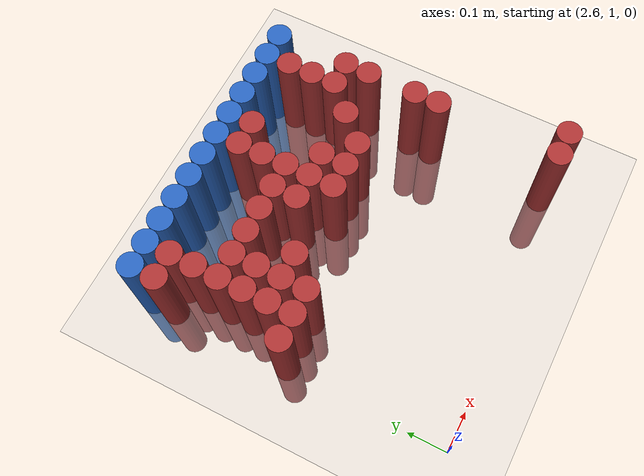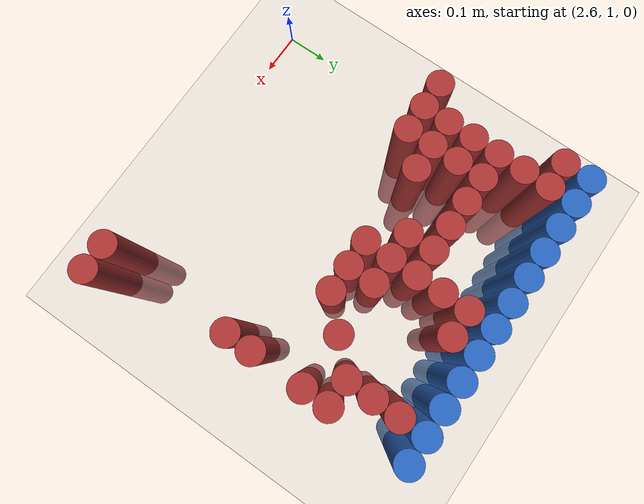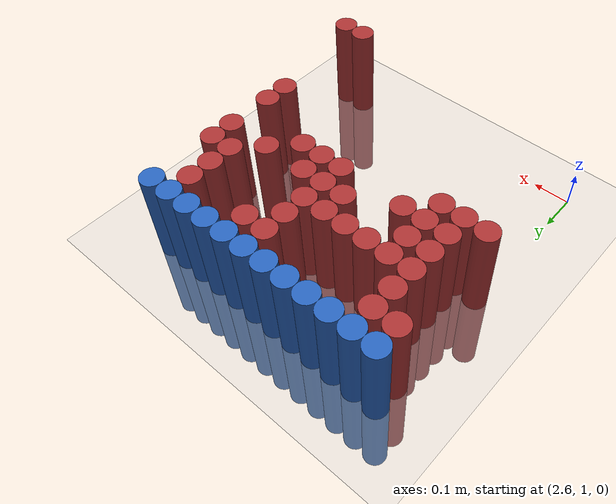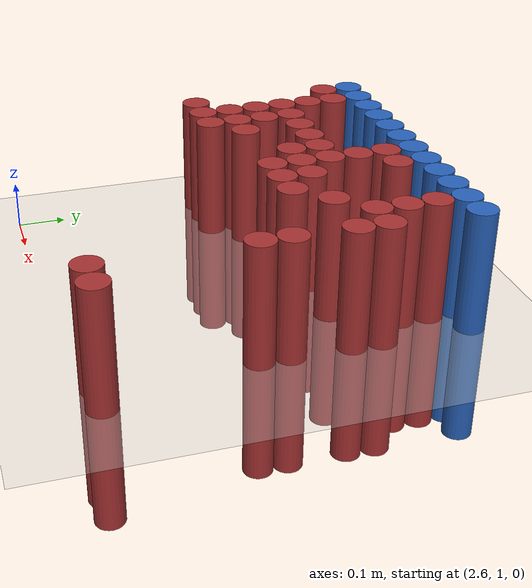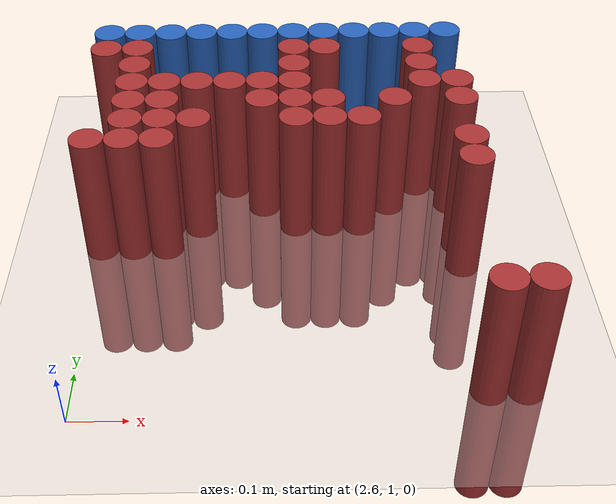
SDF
<sdf version="1.6">
 <world name="default">
  <model name="ground_plane">
   <static>1</static>
   <link name="link">
    <collision name="collision">
     <geometry><plane><normal>0 0 1</normal><size>100 100</size></plane></geometry>
     <surface><friction><ode><mu>100</mu><mu2>50</mu2></ode></friction></surface>
    </collision>
    <visual name="visual">
     <cast_shadows>0</cast_shadows>
     <geometry><plane><normal>0 0 1</normal><size>100 100</size></plane></geometry>
     <material>
      <script><uri>file://media/materials/scripts/gazebo.material</uri><name>Gazebo/Grey</name></script>
     </material>
    </visual>
   </link>
  </model>
  <model name="unit_cylinder_104">
   <static>1</static>
   <pose>2.610000 1.770000 0.000000 0.000000 0.000000 0.000000</pose>
   <link name="link">
    <inertial>
     <mass>1</mass>
     <inertia><ixx>0.145833</ixx><ixy>0</ixy><ixz>0</ixz><iyy>0.145833</iyy><iyz>0</iyz><izz>0.125</izz></inertia>
    </inertial>
    <collision name="collision">
     <geometry><cylinder><radius>0.030000</radius><length>0.5</length></cylinder></geometry>
    </collision>
    <visual name="visual">
     <geometry><cylinder><radius>0.030000</radius><length>0.5</length></cylinder></geometry>
     <material>
      <ambient>0.152000 0.379000 0.720000 1</ambient>
      <diffuse>0.152000 0.379000 0.720000 1</diffuse>
     </material>
     <material>
      <script><name>Gazebo/Grey</name><uri>file://media/materials/scripts/gazebo.material</uri></script>
     </material>
    </visual>
   </link>
  </model>
  <model name="unit_cylinder_105">
   <static>1</static>
   <pose>2.670000 1.770000 0.000000 0.000000 0.000000 0.000000</pose>
   <link name="link">
    <inertial>
     <mass>1</mass>
     <inertia><ixx>0.145833</ixx><ixy>0</ixy><ixz>0</ixz><iyy>0.145833</iyy><iyz>0</iyz><izz>0.125</izz></inertia>
    </inertial>
    <collision name="collision">
     <geometry><cylinder><radius>0.030000</radius><length>0.5</length></cylinder></geometry>
    </collision>
    <visual name="visual">
     <geometry><cylinder><radius>0.030000</radius><length>0.5</length></cylinder></geometry>
     <material>
      <ambient>0.152000 0.379000 0.720000 1</ambient>
      <diffuse>0.152000 0.379000 0.720000 1</diffuse>
     </material>
     <material>
      <script><name>Gazebo/Grey</name><uri>file://media/materials/scripts/gazebo.material</uri></script>
     </material>
    </visual>
   </link>
  </model>
  <model name="unit_cylinder_106">
   <static>1</static>
   <pose>2.730000 1.770000 0.000000 0.000000 0.000000 0.000000</pose>
   <link name="link">
    <inertial>
     <mass>1</mass>
     <inertia><ixx>0.145833</ixx><ixy>0</ixy><ixz>0</ixz><iyy>0.145833</iyy><iyz>0</iyz><izz>0.125</izz></inertia>
    </inertial>
    <collision name="collision">
     <geometry><cylinder><radius>0.030000</radius><length>0.5</length></cylinder></geometry>
    </collision>
    <visual name="visual">
     <geometry><cylinder><radius>0.030000</radius><length>0.5</length></cylinder></geometry>
     <material>
      <ambient>0.152000 0.379000 0.720000 1</ambient>
      <diffuse>0.152000 0.379000 0.720000 1</diffuse>
     </material>
     <material>
      <script><name>Gazebo/Grey</name><uri>file://media/materials/scripts/gazebo.material</uri></script>
     </material>
    </visual>
   </link>
  </model>
  <model name="unit_cylinder_107">
   <static>1</static>
   <pose>2.790000 1.770000 0.000000 0.000000 0.000000 0.000000</pose>
   <link name="link">
    <inertial>
     <mass>1</mass>
     <inertia><ixx>0.145833</ixx><ixy>0</ixy><ixz>0</ixz><iyy>0.145833</iyy><iyz>0</iyz><izz>0.125</izz></inertia>
    </inertial>
    <collision name="collision">
     <geometry><cylinder><radius>0.030000</radius><length>0.5</length></cylinder></geometry>
    </collision>
    <visual name="visual">
     <geometry><cylinder><radius>0.030000</radius><length>0.5</length></cylinder></geometry>
     <material>
      <ambient>0.152000 0.379000 0.720000 1</ambient>
      <diffuse>0.152000 0.379000 0.720000 1</diffuse>
     </material>
     <material>
      <script><name>Gazebo/Grey</name><uri>file://media/materials/scripts/gazebo.material</uri></script>
     </material>
    </visual>
   </link>
  </model>
  <model name="unit_cylinder_108">
   <static>1</static>
   <pose>2.850000 1.770000 0.000000 0.000000 0.000000 0.000000</pose>
   <link name="link">
    <inertial>
     <mass>1</mass>
     <inertia><ixx>0.145833</ixx><ixy>0</ixy><ixz>0</ixz><iyy>0.145833</iyy><iyz>0</iyz><izz>0.125</izz></inertia>
    </inertial>
    <collision name="collision">
     <geometry><cylinder><radius>0.030000</radius><length>0.5</length></cylinder></geometry>
    </collision>
    <visual name="visual">
     <geometry><cylinder><radius>0.030000</radius><length>0.5</length></cylinder></geometry>
     <material>
      <ambient>0.152000 0.379000 0.720000 1</ambient>
      <diffuse>0.152000 0.379000 0.720000 1</diffuse>
     </material>
     <material>
      <script><name>Gazebo/Grey</name><uri>file://media/materials/scripts/gazebo.material</uri></script>
     </material>
    </visual>
   </link>
  </model>
  <model name="unit_cylinder_109">
   <static>1</static>
   <pose>2.910000 1.770000 0.000000 0.000000 0.000000 0.000000</pose>
   <link name="link">
    <inertial>
     <mass>1</mass>
     <inertia><ixx>0.145833</ixx><ixy>0</ixy><ixz>0</ixz><iyy>0.145833</iyy><iyz>0</iyz><izz>0.125</izz></inertia>
    </inertial>
    <collision name="collision">
     <geometry><cylinder><radius>0.030000</radius><length>0.5</length></cylinder></geometry>
    </collision>
    <visual name="visual">
     <geometry><cylinder><radius>0.030000</radius><length>0.5</length></cylinder></geometry>
     <material>
      <ambient>0.152000 0.379000 0.720000 1</ambient>
      <diffuse>0.152000 0.379000 0.720000 1</diffuse>
     </material>
     <material>
      <script><name>Gazebo/Grey</name><uri>file://media/materials/scripts/gazebo.material</uri></script>
     </material>
    </visual>
   </link>
  </model>
  <model name="unit_cylinder_110">
   <static>1</static>
   <pose>2.970000 1.770000 0.000000 0.000000 0.000000 0.000000</pose>
   <link name="link">
    <inertial>
     <mass>1</mass>
     <inertia><ixx>0.145833</ixx><ixy>0</ixy><ixz>0</ixz><iyy>0.145833</iyy><iyz>0</iyz><izz>0.125</izz></inertia>
    </inertial>
    <collision name="collision">
     <geometry><cylinder><radius>0.030000</radius><length>0.5</length></cylinder></geometry>
    </collision>
    <visual name="visual">
     <geometry><cylinder><radius>0.030000</radius><length>0.5</length></cylinder></geometry>
     <material>
      <ambient>0.152000 0.379000 0.720000 1</ambient>
      <diffuse>0.152000 0.379000 0.720000 1</diffuse>
     </material>
     <material>
      <script><name>Gazebo/Grey</name><uri>file://media/materials/scripts/gazebo.material</uri></script>
     </material>
    </visual>
   </link>
  </model>
  <model name="unit_cylinder_111">
   <static>1</static>
   <pose>3.030000 1.770000 0.000000 0.000000 0.000000 0.000000</pose>
   <link name="link">
    <inertial>
     <mass>1</mass>
     <inertia><ixx>0.145833</ixx><ixy>0</ixy><ixz>0</ixz><iyy>0.145833</iyy><iyz>0</iyz><izz>0.125</izz></inertia>
    </inertial>
    <collision name="collision">
     <geometry><cylinder><radius>0.030000</radius><length>0.5</length></cylinder></geometry>
    </collision>
    <visual name="visual">
     <geometry><cylinder><radius>0.030000</radius><length>0.5</length></cylinder></geometry>
     <material>
      <ambient>0.152000 0.379000 0.720000 1</ambient>
      <diffuse>0.152000 0.379000 0.720000 1</diffuse>
     </material>
     <material>
      <script><name>Gazebo/Grey</name><uri>file://media/materials/scripts/gazebo.material</uri></script>
     </material>
    </visual>
   </link>
  </model>
  <model name="unit_cylinder_112">
   <static>1</static>
   <pose>3.090000 1.770000 0.000000 0.000000 0.000000 0.000000</pose>
   <link name="link">
    <inertial>
     <mass>1</mass>
     <inertia><ixx>0.145833</ixx><ixy>0</ixy><ixz>0</ixz><iyy>0.145833</iyy><iyz>0</iyz><izz>0.125</izz></inertia>
    </inertial>
    <collision name="collision">
     <geometry><cylinder><radius>0.030000</radius><length>0.5</length></cylinder></geometry>
    </collision>
    <visual name="visual">
     <geometry><cylinder><radius>0.030000</radius><length>0.5</length></cylinder></geometry>
     <material>
      <ambient>0.152000 0.379000 0.720000 1</ambient>
      <diffuse>0.152000 0.379000 0.720000 1</diffuse>
     </material>
     <material>
      <script><name>Gazebo/Grey</name><uri>file://media/materials/scripts/gazebo.material</uri></script>
     </material>
    </visual>
   </link>
  </model>
  <model name="unit_cylinder_113">
   <static>1</static>
   <pose>3.150000 1.770000 0.000000 0.000000 0.000000 0.000000</pose>
   <link name="link">
    <inertial>
     <mass>1</mass>
     <inertia><ixx>0.145833</ixx><ixy>0</ixy><ixz>0</ixz><iyy>0.145833</iyy><iyz>0</iyz><izz>0.125</izz></inertia>
    </inertial>
    <collision name="collision">
     <geometry><cylinder><radius>0.030000</radius><length>0.5</length></cylinder></geometry>
    </collision>
    <visual name="visual">
     <geometry><cylinder><radius>0.030000</radius><length>0.5</length></cylinder></geometry>
     <material>
      <ambient>0.152000 0.379000 0.720000 1</ambient>
      <diffuse>0.152000 0.379000 0.720000 1</diffuse>
     </material>
     <material>
      <script><name>Gazebo/Grey</name><uri>file://media/materials/scripts/gazebo.material</uri></script>
     </material>
    </visual>
   </link>
  </model>
  <model name="unit_cylinder_114">
   <static>1</static>
   <pose>3.210000 1.770000 0.000000 0.000000 0.000000 0.000000</pose>
   <link name="link">
    <inertial>
     <mass>1</mass>
     <inertia><ixx>0.145833</ixx><ixy>0</ixy><ixz>0</ixz><iyy>0.145833</iyy><iyz>0</iyz><izz>0.125</izz></inertia>
    </inertial>
    <collision name="collision">
     <geometry><cylinder><radius>0.030000</radius><length>0.5</length></cylinder></geometry>
    </collision>
    <visual name="visual">
     <geometry><cylinder><radius>0.030000</radius><length>0.5</length></cylinder></geometry>
     <material>
      <ambient>0.152000 0.379000 0.720000 1</ambient>
      <diffuse>0.152000 0.379000 0.720000 1</diffuse>
     </material>
     <material>
      <script><name>Gazebo/Grey</name><uri>file://media/materials/scripts/gazebo.material</uri></script>
     </material>
    </visual>
   </link>
  </model>
  <model name="unit_cylinder_115">
   <static>1</static>
   <pose>3.270000 1.770000 0.000000 0.000000 0.000000 0.000000</pose>
   <link name="link">
    <inertial>
     <mass>1</mass>
     <inertia><ixx>0.145833</ixx><ixy>0</ixy><ixz>0</ixz><iyy>0.145833</iyy><iyz>0</iyz><izz>0.125</izz></inertia>
    </inertial>
    <collision name="collision">
     <geometry><cylinder><radius>0.030000</radius><length>0.5</length></cylinder></geometry>
    </collision>
    <visual name="visual">
     <geometry><cylinder><radius>0.030000</radius><length>0.5</length></cylinder></geometry>
     <material>
      <ambient>0.152000 0.379000 0.720000 1</ambient>
      <diffuse>0.152000 0.379000 0.720000 1</diffuse>
     </material>
     <material>
      <script><name>Gazebo/Grey</name><uri>file://media/materials/scripts/gazebo.material</uri></script>
     </material>
    </visual>
   </link>
  </model>
  <model name="unit_cylinder_130">
   <static>1</static>
   <pose>2.610000 1.710000 0.000000 0.000000 0.000000 0.000000</pose>
   <link name="link">
    <inertial>
     <mass>1</mass>
     <inertia><ixx>0.145833</ixx><ixy>0</ixy><ixz>0</ixz><iyy>0.145833</iyy><iyz>0</iyz><izz>0.125</izz></inertia>
    </inertial>
    <collision name="collision">
     <geometry><cylinder><radius>0.030000</radius><length>0.5</length></cylinder></geometry>
    </collision>
    <visual name="visual">
     <geometry><cylinder><radius>0.030000</radius><length>0.5</length></cylinder></geometry>
     <material>
      <ambient>0.648000 0.192000 0.192000 1</ambient>
      <diffuse>0.648000 0.192000 0.192000 1</diffuse>
     </material>
     <material>
      <script><name>Gazebo/Grey</name><uri>file://media/materials/scripts/gazebo.material</uri></script>
     </material>
    </visual>
   </link>
  </model>
  <model name="unit_cylinder_131">
   <static>1</static>
   <pose>2.670000 1.710000 0.000000 0.000000 0.000000 0.000000</pose>
   <link name="link">
    <inertial>
     <mass>1</mass>
     <inertia><ixx>0.145833</ixx><ixy>0</ixy><ixz>0</ixz><iyy>0.145833</iyy><iyz>0</iyz><izz>0.125</izz></inertia>
    </inertial>
    <collision name="collision">
     <geometry><cylinder><radius>0.030000</radius><length>0.5</length></cylinder></geometry>
    </collision>
    <visual name="visual">
     <geometry><cylinder><radius>0.030000</radius><length>0.5</length></cylinder></geometry>
     <material>
      <ambient>0.648000 0.192000 0.192000 1</ambient>
      <diffuse>0.648000 0.192000 0.192000 1</diffuse>
     </material>
     <material>
      <script><name>Gazebo/Grey</name><uri>file://media/materials/scripts/gazebo.material</uri></script>
     </material>
    </visual>
   </link>
  </model>
  <model name="unit_cylinder_132">
   <static>1</static>
   <pose>2.970000 1.710000 0.000000 0.000000 0.000000 0.000000</pose>
   <link name="link">
    <inertial>
     <mass>1</mass>
     <inertia><ixx>0.145833</ixx><ixy>0</ixy><ixz>0</ixz><iyy>0.145833</iyy><iyz>0</iyz><izz>0.125</izz></inertia>
    </inertial>
    <collision name="collision">
     <geometry><cylinder><radius>0.030000</radius><length>0.5</length></cylinder></geometry>
    </collision>
    <visual name="visual">
     <geometry><cylinder><radius>0.030000</radius><length>0.5</length></cylinder></geometry>
     <material>
      <ambient>0.648000 0.192000 0.192000 1</ambient>
      <diffuse>0.648000 0.192000 0.192000 1</diffuse>
     </material>
     <material>
      <script><name>Gazebo/Grey</name><uri>file://media/materials/scripts/gazebo.material</uri></script>
     </material>
    </visual>
   </link>
  </model>
  <model name="unit_cylinder_133">
   <static>1</static>
   <pose>3.030000 1.710000 0.000000 0.000000 0.000000 0.000000</pose>
   <link name="link">
    <inertial>
     <mass>1</mass>
     <inertia><ixx>0.145833</ixx><ixy>0</ixy><ixz>0</ixz><iyy>0.145833</iyy><iyz>0</iyz><izz>0.125</izz></inertia>
    </inertial>
    <collision name="collision">
     <geometry><cylinder><radius>0.030000</radius><length>0.5</length></cylinder></geometry>
    </collision>
    <visual name="visual">
     <geometry><cylinder><radius>0.030000</radius><length>0.5</length></cylinder></geometry>
     <material>
      <ambient>0.648000 0.192000 0.192000 1</ambient>
      <diffuse>0.648000 0.192000 0.192000 1</diffuse>
     </material>
     <material>
      <script><name>Gazebo/Grey</name><uri>file://media/materials/scripts/gazebo.material</uri></script>
     </material>
    </visual>
   </link>
  </model>
  <model name="unit_cylinder_134">
   <static>1</static>
   <pose>3.210000 1.710000 0.000000 0.000000 0.000000 0.000000</pose>
   <link name="link">
    <inertial>
     <mass>1</mass>
     <inertia><ixx>0.145833</ixx><ixy>0</ixy><ixz>0</ixz><iyy>0.145833</iyy><iyz>0</iyz><izz>0.125</izz></inertia>
    </inertial>
    <collision name="collision">
     <geometry><cylinder><radius>0.030000</radius><length>0.5</length></cylinder></geometry>
    </collision>
    <visual name="visual">
     <geometry><cylinder><radius>0.030000</radius><length>0.5</length></cylinder></geometry>
     <material>
      <ambient>0.648000 0.192000 0.192000 1</ambient>
      <diffuse>0.648000 0.192000 0.192000 1</diffuse>
     </material>
     <material>
      <script><name>Gazebo/Grey</name><uri>file://media/materials/scripts/gazebo.material</uri></script>
     </material>
    </visual>
   </link>
  </model>
  <model name="unit_cylinder_143">
   <static>1</static>
   <pose>2.670000 1.650000 0.000000 0.000000 0.000000 0.000000</pose>
   <link name="link">
    <inertial>
     <mass>1</mass>
     <inertia><ixx>0.145833</ixx><ixy>0</ixy><ixz>0</ixz><iyy>0.145833</iyy><iyz>0</iyz><izz>0.125</izz></inertia>
    </inertial>
    <collision name="collision">
     <geometry><cylinder><radius>0.030000</radius><length>0.5</length></cylinder></geometry>
    </collision>
    <visual name="visual">
     <geometry><cylinder><radius>0.030000</radius><length>0.5</length></cylinder></geometry>
     <material>
      <ambient>0.648000 0.192000 0.192000 1</ambient>
      <diffuse>0.648000 0.192000 0.192000 1</diffuse>
     </material>
     <material>
      <script><name>Gazebo/Grey</name><uri>file://media/materials/scripts/gazebo.material</uri></script>
     </material>
    </visual>
   </link>
  </model>
  <model name="unit_cylinder_144">
   <static>1</static>
   <pose>2.970000 1.650000 0.000000 0.000000 0.000000 0.000000</pose>
   <link name="link">
    <inertial>
     <mass>1</mass>
     <inertia><ixx>0.145833</ixx><ixy>0</ixy><ixz>0</ixz><iyy>0.145833</iyy><iyz>0</iyz><izz>0.125</izz></inertia>
    </inertial>
    <collision name="collision">
     <geometry><cylinder><radius>0.030000</radius><length>0.5</length></cylinder></geometry>
    </collision>
    <visual name="visual">
     <geometry><cylinder><radius>0.030000</radius><length>0.5</length></cylinder></geometry>
     <material>
      <ambient>0.648000 0.192000 0.192000 1</ambient>
      <diffuse>0.648000 0.192000 0.192000 1</diffuse>
     </material>
     <material>
      <script><name>Gazebo/Grey</name><uri>file://media/materials/scripts/gazebo.material</uri></script>
     </material>
    </visual>
   </link>
  </model>
  <model name="unit_cylinder_145">
   <static>1</static>
   <pose>3.210000 1.650000 0.000000 0.000000 0.000000 0.000000</pose>
   <link name="link">
    <inertial>
     <mass>1</mass>
     <inertia><ixx>0.145833</ixx><ixy>0</ixy><ixz>0</ixz><iyy>0.145833</iyy><iyz>0</iyz><izz>0.125</izz></inertia>
    </inertial>
    <collision name="collision">
     <geometry><cylinder><radius>0.030000</radius><length>0.5</length></cylinder></geometry>
    </collision>
    <visual name="visual">
     <geometry><cylinder><radius>0.030000</radius><length>0.5</length></cylinder></geometry>
     <material>
      <ambient>0.648000 0.192000 0.192000 1</ambient>
      <diffuse>0.648000 0.192000 0.192000 1</diffuse>
     </material>
     <material>
      <script><name>Gazebo/Grey</name><uri>file://media/materials/scripts/gazebo.material</uri></script>
     </material>
    </visual>
   </link>
  </model>
  <model name="unit_cylinder_150">
   <static>1</static>
   <pose>2.670000 1.590000 0.000000 0.000000 0.000000 0.000000</pose>
   <link name="link">
    <inertial>
     <mass>1</mass>
     <inertia><ixx>0.145833</ixx><ixy>0</ixy><ixz>0</ixz><iyy>0.145833</iyy><iyz>0</iyz><izz>0.125</izz></inertia>
    </inertial>
    <collision name="collision">
     <geometry><cylinder><radius>0.030000</radius><length>0.5</length></cylinder></geometry>
    </collision>
    <visual name="visual">
     <geometry><cylinder><radius>0.030000</radius><length>0.5</length></cylinder></geometry>
     <material>
      <ambient>0.648000 0.192000 0.192000 1</ambient>
      <diffuse>0.648000 0.192000 0.192000 1</diffuse>
     </material>
     <material>
      <script><name>Gazebo/Grey</name><uri>file://media/materials/scripts/gazebo.material</uri></script>
     </material>
    </visual>
   </link>
  </model>
  <model name="unit_cylinder_151">
   <static>1</static>
   <pose>2.730000 1.590000 0.000000 0.000000 0.000000 0.000000</pose>
   <link name="link">
    <inertial>
     <mass>1</mass>
     <inertia><ixx>0.145833</ixx><ixy>0</ixy><ixz>0</ixz><iyy>0.145833</iyy><iyz>0</iyz><izz>0.125</izz></inertia>
    </inertial>
    <collision name="collision">
     <geometry><cylinder><radius>0.030000</radius><length>0.5</length></cylinder></geometry>
    </collision>
    <visual name="visual">
     <geometry><cylinder><radius>0.030000</radius><length>0.5</length></cylinder></geometry>
     <material>
      <ambient>0.648000 0.192000 0.192000 1</ambient>
      <diffuse>0.648000 0.192000 0.192000 1</diffuse>
     </material>
     <material>
      <script><name>Gazebo/Grey</name><uri>file://media/materials/scripts/gazebo.material</uri></script>
     </material>
    </visual>
   </link>
  </model>
  <model name="unit_cylinder_152">
   <static>1</static>
   <pose>2.790000 1.590000 0.000000 0.000000 0.000000 0.000000</pose>
   <link name="link">
    <inertial>
     <mass>1</mass>
     <inertia><ixx>0.145833</ixx><ixy>0</ixy><ixz>0</ixz><iyy>0.145833</iyy><iyz>0</iyz><izz>0.125</izz></inertia>
    </inertial>
    <collision name="collision">
     <geometry><cylinder><radius>0.030000</radius><length>0.5</length></cylinder></geometry>
    </collision>
    <visual name="visual">
     <geometry><cylinder><radius>0.030000</radius><length>0.5</length></cylinder></geometry>
     <material>
      <ambient>0.648000 0.192000 0.192000 1</ambient>
      <diffuse>0.648000 0.192000 0.192000 1</diffuse>
     </material>
     <material>
      <script><name>Gazebo/Grey</name><uri>file://media/materials/scripts/gazebo.material</uri></script>
     </material>
    </visual>
   </link>
  </model>
  <model name="unit_cylinder_153">
   <static>1</static>
   <pose>2.850000 1.590000 0.000000 0.000000 0.000000 0.000000</pose>
   <link name="link">
    <inertial>
     <mass>1</mass>
     <inertia><ixx>0.145833</ixx><ixy>0</ixy><ixz>0</ixz><iyy>0.145833</iyy><iyz>0</iyz><izz>0.125</izz></inertia>
    </inertial>
    <collision name="collision">
     <geometry><cylinder><radius>0.030000</radius><length>0.5</length></cylinder></geometry>
    </collision>
    <visual name="visual">
     <geometry><cylinder><radius>0.030000</radius><length>0.5</length></cylinder></geometry>
     <material>
      <ambient>0.648000 0.192000 0.192000 1</ambient>
      <diffuse>0.648000 0.192000 0.192000 1</diffuse>
     </material>
     <material>
      <script><name>Gazebo/Grey</name><uri>file://media/materials/scripts/gazebo.material</uri></script>
     </material>
    </visual>
   </link>
  </model>
  <model name="unit_cylinder_154">
   <static>1</static>
   <pose>2.910000 1.590000 0.000000 0.000000 0.000000 0.000000</pose>
   <link name="link">
    <inertial>
     <mass>1</mass>
     <inertia><ixx>0.145833</ixx><ixy>0</ixy><ixz>0</ixz><iyy>0.145833</iyy><iyz>0</iyz><izz>0.125</izz></inertia>
    </inertial>
    <collision name="collision">
     <geometry><cylinder><radius>0.030000</radius><length>0.5</length></cylinder></geometry>
    </collision>
    <visual name="visual">
     <geometry><cylinder><radius>0.030000</radius><length>0.5</length></cylinder></geometry>
     <material>
      <ambient>0.648000 0.192000 0.192000 1</ambient>
      <diffuse>0.648000 0.192000 0.192000 1</diffuse>
     </material>
     <material>
      <script><name>Gazebo/Grey</name><uri>file://media/materials/scripts/gazebo.material</uri></script>
     </material>
    </visual>
   </link>
  </model>
  <model name="unit_cylinder_155">
   <static>1</static>
   <pose>2.970000 1.590000 0.000000 0.000000 0.000000 0.000000</pose>
   <link name="link">
    <inertial>
     <mass>1</mass>
     <inertia><ixx>0.145833</ixx><ixy>0</ixy><ixz>0</ixz><iyy>0.145833</iyy><iyz>0</iyz><izz>0.125</izz></inertia>
    </inertial>
    <collision name="collision">
     <geometry><cylinder><radius>0.030000</radius><length>0.5</length></cylinder></geometry>
    </collision>
    <visual name="visual">
     <geometry><cylinder><radius>0.030000</radius><length>0.5</length></cylinder></geometry>
     <material>
      <ambient>0.648000 0.192000 0.192000 1</ambient>
      <diffuse>0.648000 0.192000 0.192000 1</diffuse>
     </material>
     <material>
      <script><name>Gazebo/Grey</name><uri>file://media/materials/scripts/gazebo.material</uri></script>
     </material>
    </visual>
   </link>
  </model>
  <model name="unit_cylinder_156">
   <static>1</static>
   <pose>3.210000 1.590000 0.000000 0.000000 0.000000 0.000000</pose>
   <link name="link">
    <inertial>
     <mass>1</mass>
     <inertia><ixx>0.145833</ixx><ixy>0</ixy><ixz>0</ixz><iyy>0.145833</iyy><iyz>0</iyz><izz>0.125</izz></inertia>
    </inertial>
    <collision name="collision">
     <geometry><cylinder><radius>0.030000</radius><length>0.5</length></cylinder></geometry>
    </collision>
    <visual name="visual">
     <geometry><cylinder><radius>0.030000</radius><length>0.5</length></cylinder></geometry>
     <material>
      <ambient>0.648000 0.192000 0.192000 1</ambient>
      <diffuse>0.648000 0.192000 0.192000 1</diffuse>
     </material>
     <material>
      <script><name>Gazebo/Grey</name><uri>file://media/materials/scripts/gazebo.material</uri></script>
     </material>
    </visual>
   </link>
  </model>
  <model name="unit_cylinder_157">
   <static>1</static>
   <pose>3.270000 1.590000 0.000000 0.000000 0.000000 0.000000</pose>
   <link name="link">
    <inertial>
     <mass>1</mass>
     <inertia><ixx>0.145833</ixx><ixy>0</ixy><ixz>0</ixz><iyy>0.145833</iyy><iyz>0</iyz><izz>0.125</izz></inertia>
    </inertial>
    <collision name="collision">
     <geometry><cylinder><radius>0.030000</radius><length>0.5</length></cylinder></geometry>
    </collision>
    <visual name="visual">
     <geometry><cylinder><radius>0.030000</radius><length>0.5</length></cylinder></geometry>
     <material>
      <ambient>0.648000 0.192000 0.192000 1</ambient>
      <diffuse>0.648000 0.192000 0.192000 1</diffuse>
     </material>
     <material>
      <script><name>Gazebo/Grey</name><uri>file://media/materials/scripts/gazebo.material</uri></script>
     </material>
    </visual>
   </link>
  </model>
  <model name="unit_cylinder_164">
   <static>1</static>
   <pose>2.670000 1.530000 0.000000 0.000000 0.000000 0.000000</pose>
   <link name="link">
    <inertial>
     <mass>1</mass>
     <inertia><ixx>0.145833</ixx><ixy>0</ixy><ixz>0</ixz><iyy>0.145833</iyy><iyz>0</iyz><izz>0.125</izz></inertia>
    </inertial>
    <collision name="collision">
     <geometry><cylinder><radius>0.030000</radius><length>0.5</length></cylinder></geometry>
    </collision>
    <visual name="visual">
     <geometry><cylinder><radius>0.030000</radius><length>0.5</length></cylinder></geometry>
     <material>
      <ambient>0.648000 0.192000 0.192000 1</ambient>
      <diffuse>0.648000 0.192000 0.192000 1</diffuse>
     </material>
     <material>
      <script><name>Gazebo/Grey</name><uri>file://media/materials/scripts/gazebo.material</uri></script>
     </material>
    </visual>
   </link>
  </model>
  <model name="unit_cylinder_165">
   <static>1</static>
   <pose>2.730000 1.530000 0.000000 0.000000 0.000000 0.000000</pose>
   <link name="link">
    <inertial>
     <mass>1</mass>
     <inertia><ixx>0.145833</ixx><ixy>0</ixy><ixz>0</ixz><iyy>0.145833</iyy><iyz>0</iyz><izz>0.125</izz></inertia>
    </inertial>
    <collision name="collision">
     <geometry><cylinder><radius>0.030000</radius><length>0.5</length></cylinder></geometry>
    </collision>
    <visual name="visual">
     <geometry><cylinder><radius>0.030000</radius><length>0.5</length></cylinder></geometry>
     <material>
      <ambient>0.648000 0.192000 0.192000 1</ambient>
      <diffuse>0.648000 0.192000 0.192000 1</diffuse>
     </material>
     <material>
      <script><name>Gazebo/Grey</name><uri>file://media/materials/scripts/gazebo.material</uri></script>
     </material>
    </visual>
   </link>
  </model>
  <model name="unit_cylinder_166">
   <static>1</static>
   <pose>2.910000 1.530000 0.000000 0.000000 0.000000 0.000000</pose>
   <link name="link">
    <inertial>
     <mass>1</mass>
     <inertia><ixx>0.145833</ixx><ixy>0</ixy><ixz>0</ixz><iyy>0.145833</iyy><iyz>0</iyz><izz>0.125</izz></inertia>
    </inertial>
    <collision name="collision">
     <geometry><cylinder><radius>0.030000</radius><length>0.5</length></cylinder></geometry>
    </collision>
    <visual name="visual">
     <geometry><cylinder><radius>0.030000</radius><length>0.5</length></cylinder></geometry>
     <material>
      <ambient>0.648000 0.192000 0.192000 1</ambient>
      <diffuse>0.648000 0.192000 0.192000 1</diffuse>
     </material>
     <material>
      <script><name>Gazebo/Grey</name><uri>file://media/materials/scripts/gazebo.material</uri></script>
     </material>
    </visual>
   </link>
  </model>
  <model name="unit_cylinder_167">
   <static>1</static>
   <pose>2.970000 1.530000 0.000000 0.000000 0.000000 0.000000</pose>
   <link name="link">
    <inertial>
     <mass>1</mass>
     <inertia><ixx>0.145833</ixx><ixy>0</ixy><ixz>0</ixz><iyy>0.145833</iyy><iyz>0</iyz><izz>0.125</izz></inertia>
    </inertial>
    <collision name="collision">
     <geometry><cylinder><radius>0.030000</radius><length>0.5</length></cylinder></geometry>
    </collision>
    <visual name="visual">
     <geometry><cylinder><radius>0.030000</radius><length>0.5</length></cylinder></geometry>
     <material>
      <ambient>0.648000 0.192000 0.192000 1</ambient>
      <diffuse>0.648000 0.192000 0.192000 1</diffuse>
     </material>
     <material>
      <script><name>Gazebo/Grey</name><uri>file://media/materials/scripts/gazebo.material</uri></script>
     </material>
    </visual>
   </link>
  </model>
  <model name="unit_cylinder_168">
   <static>1</static>
   <pose>3.030000 1.530000 0.000000 0.000000 0.000000 0.000000</pose>
   <link name="link">
    <inertial>
     <mass>1</mass>
     <inertia><ixx>0.145833</ixx><ixy>0</ixy><ixz>0</ixz><iyy>0.145833</iyy><iyz>0</iyz><izz>0.125</izz></inertia>
    </inertial>
    <collision name="collision">
     <geometry><cylinder><radius>0.030000</radius><length>0.5</length></cylinder></geometry>
    </collision>
    <visual name="visual">
     <geometry><cylinder><radius>0.030000</radius><length>0.5</length></cylinder></geometry>
     <material>
      <ambient>0.648000 0.192000 0.192000 1</ambient>
      <diffuse>0.648000 0.192000 0.192000 1</diffuse>
     </material>
     <material>
      <script><name>Gazebo/Grey</name><uri>file://media/materials/scripts/gazebo.material</uri></script>
     </material>
    </visual>
   </link>
  </model>
  <model name="unit_cylinder_169">
   <static>1</static>
   <pose>3.150000 1.530000 0.000000 0.000000 0.000000 0.000000</pose>
   <link name="link">
    <inertial>
     <mass>1</mass>
     <inertia><ixx>0.145833</ixx><ixy>0</ixy><ixz>0</ixz><iyy>0.145833</iyy><iyz>0</iyz><izz>0.125</izz></inertia>
    </inertial>
    <collision name="collision">
     <geometry><cylinder><radius>0.030000</radius><length>0.5</length></cylinder></geometry>
    </collision>
    <visual name="visual">
     <geometry><cylinder><radius>0.030000</radius><length>0.5</length></cylinder></geometry>
     <material>
      <ambient>0.648000 0.192000 0.192000 1</ambient>
      <diffuse>0.648000 0.192000 0.192000 1</diffuse>
     </material>
     <material>
      <script><name>Gazebo/Grey</name><uri>file://media/materials/scripts/gazebo.material</uri></script>
     </material>
    </visual>
   </link>
  </model>
  <model name="unit_cylinder_170">
   <static>1</static>
   <pose>3.270000 1.530000 0.000000 0.000000 0.000000 0.000000</pose>
   <link name="link">
    <inertial>
     <mass>1</mass>
     <inertia><ixx>0.145833</ixx><ixy>0</ixy><ixz>0</ixz><iyy>0.145833</iyy><iyz>0</iyz><izz>0.125</izz></inertia>
    </inertial>
    <collision name="collision">
     <geometry><cylinder><radius>0.030000</radius><length>0.5</length></cylinder></geometry>
    </collision>
    <visual name="visual">
     <geometry><cylinder><radius>0.030000</radius><length>0.5</length></cylinder></geometry>
     <material>
      <ambient>0.648000 0.192000 0.192000 1</ambient>
      <diffuse>0.648000 0.192000 0.192000 1</diffuse>
     </material>
     <material>
      <script><name>Gazebo/Grey</name><uri>file://media/materials/scripts/gazebo.material</uri></script>
     </material>
    </visual>
   </link>
  </model>
  <model name="unit_cylinder_176">
   <static>1</static>
   <pose>2.670000 1.470000 0.000000 0.000000 0.000000 0.000000</pose>
   <link name="link">
    <inertial>
     <mass>1</mass>
     <inertia><ixx>0.145833</ixx><ixy>0</ixy><ixz>0</ixz><iyy>0.145833</iyy><iyz>0</iyz><izz>0.125</izz></inertia>
    </inertial>
    <collision name="collision">
     <geometry><cylinder><radius>0.030000</radius><length>0.5</length></cylinder></geometry>
    </collision>
    <visual name="visual">
     <geometry><cylinder><radius>0.030000</radius><length>0.5</length></cylinder></geometry>
     <material>
      <ambient>0.648000 0.192000 0.192000 1</ambient>
      <diffuse>0.648000 0.192000 0.192000 1</diffuse>
     </material>
     <material>
      <script><name>Gazebo/Grey</name><uri>file://media/materials/scripts/gazebo.material</uri></script>
     </material>
    </visual>
   </link>
  </model>
  <model name="unit_cylinder_177">
   <static>1</static>
   <pose>2.730000 1.470000 0.000000 0.000000 0.000000 0.000000</pose>
   <link name="link">
    <inertial>
     <mass>1</mass>
     <inertia><ixx>0.145833</ixx><ixy>0</ixy><ixz>0</ixz><iyy>0.145833</iyy><iyz>0</iyz><izz>0.125</izz></inertia>
    </inertial>
    <collision name="collision">
     <geometry><cylinder><radius>0.030000</radius><length>0.5</length></cylinder></geometry>
    </collision>
    <visual name="visual">
     <geometry><cylinder><radius>0.030000</radius><length>0.5</length></cylinder></geometry>
     <material>
      <ambient>0.648000 0.192000 0.192000 1</ambient>
      <diffuse>0.648000 0.192000 0.192000 1</diffuse>
     </material>
     <material>
      <script><name>Gazebo/Grey</name><uri>file://media/materials/scripts/gazebo.material</uri></script>
     </material>
    </visual>
   </link>
  </model>
  <model name="unit_cylinder_178">
   <static>1</static>
   <pose>2.790000 1.470000 0.000000 0.000000 0.000000 0.000000</pose>
   <link name="link">
    <inertial>
     <mass>1</mass>
     <inertia><ixx>0.145833</ixx><ixy>0</ixy><ixz>0</ixz><iyy>0.145833</iyy><iyz>0</iyz><izz>0.125</izz></inertia>
    </inertial>
    <collision name="collision">
     <geometry><cylinder><radius>0.030000</radius><length>0.5</length></cylinder></geometry>
    </collision>
    <visual name="visual">
     <geometry><cylinder><radius>0.030000</radius><length>0.5</length></cylinder></geometry>
     <material>
      <ambient>0.648000 0.192000 0.192000 1</ambient>
      <diffuse>0.648000 0.192000 0.192000 1</diffuse>
     </material>
     <material>
      <script><name>Gazebo/Grey</name><uri>file://media/materials/scripts/gazebo.material</uri></script>
     </material>
    </visual>
   </link>
  </model>
  <model name="unit_cylinder_179">
   <static>1</static>
   <pose>2.970000 1.470000 0.000000 0.000000 0.000000 0.000000</pose>
   <link name="link">
    <inertial>
     <mass>1</mass>
     <inertia><ixx>0.145833</ixx><ixy>0</ixy><ixz>0</ixz><iyy>0.145833</iyy><iyz>0</iyz><izz>0.125</izz></inertia>
    </inertial>
    <collision name="collision">
     <geometry><cylinder><radius>0.030000</radius><length>0.5</length></cylinder></geometry>
    </collision>
    <visual name="visual">
     <geometry><cylinder><radius>0.030000</radius><length>0.5</length></cylinder></geometry>
     <material>
      <ambient>0.648000 0.192000 0.192000 1</ambient>
      <diffuse>0.648000 0.192000 0.192000 1</diffuse>
     </material>
     <material>
      <script><name>Gazebo/Grey</name><uri>file://media/materials/scripts/gazebo.material</uri></script>
     </material>
    </visual>
   </link>
  </model>
  <model name="unit_cylinder_180">
   <static>1</static>
   <pose>3.030000 1.470000 0.000000 0.000000 0.000000 0.000000</pose>
   <link name="link">
    <inertial>
     <mass>1</mass>
     <inertia><ixx>0.145833</ixx><ixy>0</ixy><ixz>0</ixz><iyy>0.145833</iyy><iyz>0</iyz><izz>0.125</izz></inertia>
    </inertial>
    <collision name="collision">
     <geometry><cylinder><radius>0.030000</radius><length>0.5</length></cylinder></geometry>
    </collision>
    <visual name="visual">
     <geometry><cylinder><radius>0.030000</radius><length>0.5</length></cylinder></geometry>
     <material>
      <ambient>0.648000 0.192000 0.192000 1</ambient>
      <diffuse>0.648000 0.192000 0.192000 1</diffuse>
     </material>
     <material>
      <script><name>Gazebo/Grey</name><uri>file://media/materials/scripts/gazebo.material</uri></script>
     </material>
    </visual>
   </link>
  </model>
  <model name="unit_cylinder_181">
   <static>1</static>
   <pose>3.090000 1.470000 0.000000 0.000000 0.000000 0.000000</pose>
   <link name="link">
    <inertial>
     <mass>1</mass>
     <inertia><ixx>0.145833</ixx><ixy>0</ixy><ixz>0</ixz><iyy>0.145833</iyy><iyz>0</iyz><izz>0.125</izz></inertia>
    </inertial>
    <collision name="collision">
     <geometry><cylinder><radius>0.030000</radius><length>0.5</length></cylinder></geometry>
    </collision>
    <visual name="visual">
     <geometry><cylinder><radius>0.030000</radius><length>0.5</length></cylinder></geometry>
     <material>
      <ambient>0.648000 0.192000 0.192000 1</ambient>
      <diffuse>0.648000 0.192000 0.192000 1</diffuse>
     </material>
     <material>
      <script><name>Gazebo/Grey</name><uri>file://media/materials/scripts/gazebo.material</uri></script>
     </material>
    </visual>
   </link>
  </model>
  <model name="unit_cylinder_190">
   <static>1</static>
   <pose>2.610000 1.410000 0.000000 0.000000 0.000000 0.000000</pose>
   <link name="link">
    <inertial>
     <mass>1</mass>
     <inertia><ixx>0.145833</ixx><ixy>0</ixy><ixz>0</ixz><iyy>0.145833</iyy><iyz>0</iyz><izz>0.125</izz></inertia>
    </inertial>
    <collision name="collision">
     <geometry><cylinder><radius>0.030000</radius><length>0.5</length></cylinder></geometry>
    </collision>
    <visual name="visual">
     <geometry><cylinder><radius>0.030000</radius><length>0.5</length></cylinder></geometry>
     <material>
      <ambient>0.648000 0.192000 0.192000 1</ambient>
      <diffuse>0.648000 0.192000 0.192000 1</diffuse>
     </material>
     <material>
      <script><name>Gazebo/Grey</name><uri>file://media/materials/scripts/gazebo.material</uri></script>
     </material>
    </visual>
   </link>
  </model>
  <model name="unit_cylinder_191">
   <static>1</static>
   <pose>2.670000 1.410000 0.000000 0.000000 0.000000 0.000000</pose>
   <link name="link">
    <inertial>
     <mass>1</mass>
     <inertia><ixx>0.145833</ixx><ixy>0</ixy><ixz>0</ixz><iyy>0.145833</iyy><iyz>0</iyz><izz>0.125</izz></inertia>
    </inertial>
    <collision name="collision">
     <geometry><cylinder><radius>0.030000</radius><length>0.5</length></cylinder></geometry>
    </collision>
    <visual name="visual">
     <geometry><cylinder><radius>0.030000</radius><length>0.5</length></cylinder></geometry>
     <material>
      <ambient>0.648000 0.192000 0.192000 1</ambient>
      <diffuse>0.648000 0.192000 0.192000 1</diffuse>
     </material>
     <material>
      <script><name>Gazebo/Grey</name><uri>file://media/materials/scripts/gazebo.material</uri></script>
     </material>
    </visual>
   </link>
  </model>
  <model name="unit_cylinder_192">
   <static>1</static>
   <pose>2.730000 1.410000 0.000000 0.000000 0.000000 0.000000</pose>
   <link name="link">
    <inertial>
     <mass>1</mass>
     <inertia><ixx>0.145833</ixx><ixy>0</ixy><ixz>0</ixz><iyy>0.145833</iyy><iyz>0</iyz><izz>0.125</izz></inertia>
    </inertial>
    <collision name="collision">
     <geometry><cylinder><radius>0.030000</radius><length>0.5</length></cylinder></geometry>
    </collision>
    <visual name="visual">
     <geometry><cylinder><radius>0.030000</radius><length>0.5</length></cylinder></geometry>
     <material>
      <ambient>0.648000 0.192000 0.192000 1</ambient>
      <diffuse>0.648000 0.192000 0.192000 1</diffuse>
     </material>
     <material>
      <script><name>Gazebo/Grey</name><uri>file://media/materials/scripts/gazebo.material</uri></script>
     </material>
    </visual>
   </link>
  </model>
  <model name="unit_cylinder_193">
   <static>1</static>
   <pose>3.270000 1.410000 0.000000 0.000000 0.000000 0.000000</pose>
   <link name="link">
    <inertial>
     <mass>1</mass>
     <inertia><ixx>0.145833</ixx><ixy>0</ixy><ixz>0</ixz><iyy>0.145833</iyy><iyz>0</iyz><izz>0.125</izz></inertia>
    </inertial>
    <collision name="collision">
     <geometry><cylinder><radius>0.030000</radius><length>0.5</length></cylinder></geometry>
    </collision>
    <visual name="visual">
     <geometry><cylinder><radius>0.030000</radius><length>0.5</length></cylinder></geometry>
     <material>
      <ambient>0.648000 0.192000 0.192000 1</ambient>
      <diffuse>0.648000 0.192000 0.192000 1</diffuse>
     </material>
     <material>
      <script><name>Gazebo/Grey</name><uri>file://media/materials/scripts/gazebo.material</uri></script>
     </material>
    </visual>
   </link>
  </model>
  <model name="unit_cylinder_202">
   <static>1</static>
   <pose>3.270000 1.350000 0.000000 0.000000 0.000000 0.000000</pose>
   <link name="link">
    <inertial>
     <mass>1</mass>
     <inertia><ixx>0.145833</ixx><ixy>0</ixy><ixz>0</ixz><iyy>0.145833</iyy><iyz>0</iyz><izz>0.125</izz></inertia>
    </inertial>
    <collision name="collision">
     <geometry><cylinder><radius>0.030000</radius><length>0.5</length></cylinder></geometry>
    </collision>
    <visual name="visual">
     <geometry><cylinder><radius>0.030000</radius><length>0.5</length></cylinder></geometry>
     <material>
      <ambient>0.648000 0.192000 0.192000 1</ambient>
      <diffuse>0.648000 0.192000 0.192000 1</diffuse>
     </material>
     <material>
      <script><name>Gazebo/Grey</name><uri>file://media/materials/scripts/gazebo.material</uri></script>
     </material>
    </visual>
   </link>
  </model>
  <model name="unit_cylinder_239">
   <static>1</static>
   <pose>3.270000 1.050000 0.000000 0.000000 0.000000 0.000000</pose>
   <link name="link">
    <inertial>
     <mass>1</mass>
     <inertia><ixx>0.145833</ixx><ixy>0</ixy><ixz>0</ixz><iyy>0.145833</iyy><iyz>0</iyz><izz>0.125</izz></inertia>
    </inertial>
    <collision name="collision">
     <geometry><cylinder><radius>0.030000</radius><length>0.5</length></cylinder></geometry>
    </collision>
    <visual name="visual">
     <geometry><cylinder><radius>0.030000</radius><length>0.5</length></cylinder></geometry>
     <material>
      <ambient>0.648000 0.192000 0.192000 1</ambient>
      <diffuse>0.648000 0.192000 0.192000 1</diffuse>
     </material>
     <material>
      <script><name>Gazebo/Grey</name><uri>file://media/materials/scripts/gazebo.material</uri></script>
     </material>
    </visual>
   </link>
  </model>
  <model name="unit_cylinder_240">
   <static>1</static>
   <pose>3.330000 1.050000 0.000000 0.000000 0.000000 0.000000</pose>
   <link name="link">
    <inertial>
     <mass>1</mass>
     <inertia><ixx>0.145833</ixx><ixy>0</ixy><ixz>0</ixz><iyy>0.145833</iyy><iyz>0</iyz><izz>0.125</izz></inertia>
    </inertial>
    <collision name="collision">
     <geometry><cylinder><radius>0.030000</radius><length>0.5</length></cylinder></geometry>
    </collision>
    <visual name="visual">
     <geometry><cylinder><radius>0.030000</radius><length>0.5</length></cylinder></geometry>
     <material>
      <ambient>0.648000 0.192000 0.192000 1</ambient>
      <diffuse>0.648000 0.192000 0.192000 1</diffuse>
     </material>
     <material>
      <script><name>Gazebo/Grey</name><uri>file://media/materials/scripts/gazebo.material</uri></script>
     </material>
    </visual>
   </link>
  </model>
 </world>
</sdf>
